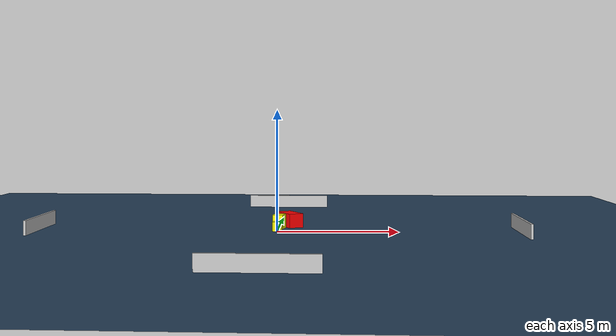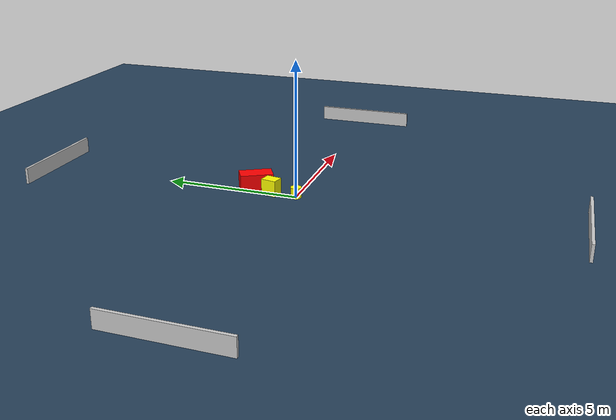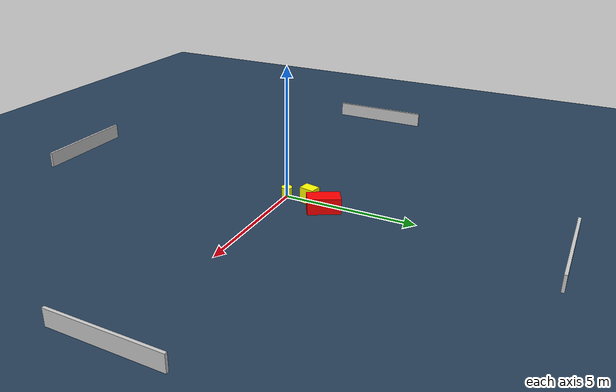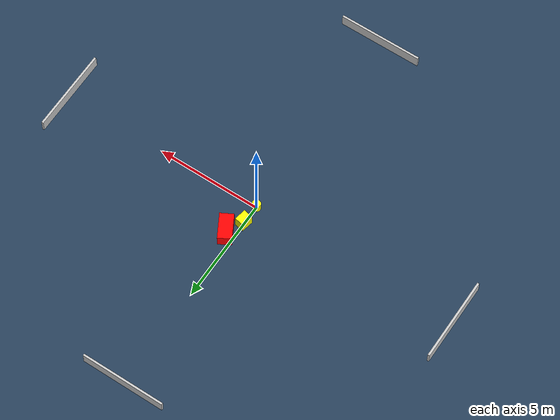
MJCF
<?xml version="1.0" ?>
<mujoco model="generated_environment">
  <option timestep="0.01" integrator="RK4" cone="elliptic"/>
  <default>
    <geom density="1"/>
  </default>
  <asset>
    <texture builtin="gradient" height="3072" name="skybox" rgb1="0.3 0.5 0.7" rgb2="0 0 0" type="skybox" width="512"/>
    <texture builtin="checker" height="300" name="groundplane" rgb1="0.2 0.3 0.4" rgb2="0.1 0.2 0.3" type="2d" width="300"/>
    <material name="groundplane" reflectance="0.2" texrepeat="5 5" texture="groundplane"/>
  </asset>
  <worldbody>
    <light dir="0 0 -1" directional="true" pos="0 0 1.5"/>
    <geom condim="3" friction="0.5 0.005 0.001" material="groundplane" name="floor" pos="0 0 0" size="0 0 0.05" type="plane"/>
    <body name="walls">
      <geom name="wall_1" condim="4" pos="-10.0 0.0 0.3" rgba="0.800000011920929 0.800000011920929 0.800000011920929 1.0" size="0.05 2.0 0.3" type="box"/>
      <geom name="wall_2" condim="4" pos="10.0 0.0 0.3" rgba="0.800000011920929 0.800000011920929 0.800000011920929 1.0" size="0.05 2.0 0.3" type="box"/>
      <geom name="wall_3" condim="4" pos="0.0 -10.0 0.3" rgba="0.800000011920929 0.800000011920929 0.800000011920929 1.0" size="2.0 0.05 0.3" type="box"/>
      <geom name="wall_4" condim="4" pos="0.0 10.0 0.3" rgba="0.800000011920929 0.800000011920929 0.800000011920929 1.0" size="2.0 0.05 0.3" type="box"/>
    </body>
    <body name="robot">
      <joint name="joint_x" type="slide" pos="0 0 0" axis="1 0 0"/>
      <joint name="joint_y" type="slide" pos="0 0 0" axis="0 1 0"/>
      <geom name="robot" type="cylinder" pos="0.0 0.0 0.2" size="0.2 0.2 0.0" mass="5.0" friction="1.0 0.005 0.0001" condim="4" rgba="1.0 1.0 0.0 1.0"/>
    </body>
    <body name="obstacle_1_movable">
      <geom name="obstacle_1_movable" condim="4" pos="0.028951642823124638 0.9561456257338283 0.3" euler="0 0 168.69928365855415" friction="0.0 0.005 0.001" rgba="1.0 1.0 0.0 1.0" size="0.2223075577841071 0.2870637097453919 0.3" type="box" mass="0.1"/>
      <joint type="free"/>
    </body>
    <body name="obstacle_2_static">
      <geom name="obstacle_2_static" condim="4" pos="0.4465927460201558 1.7181814492372518 0.3" euler="0 0 299.2281078905271" friction="0.0 0.005 0.001" rgba="1.0 0.0 0.0 1.0" size="0.6081685199294297 0.32503536886619777 0.3" type="box"/>
    </body>
  </worldbody>
  <actuator>
    <motor name="actuator_x" joint="joint_x" gear="1" ctrlrange="-1 1"/>
    <motor name="actuator_y" joint="joint_y" gear="1" ctrlrange="-1 1"/>
  </actuator>
</mujoco>
